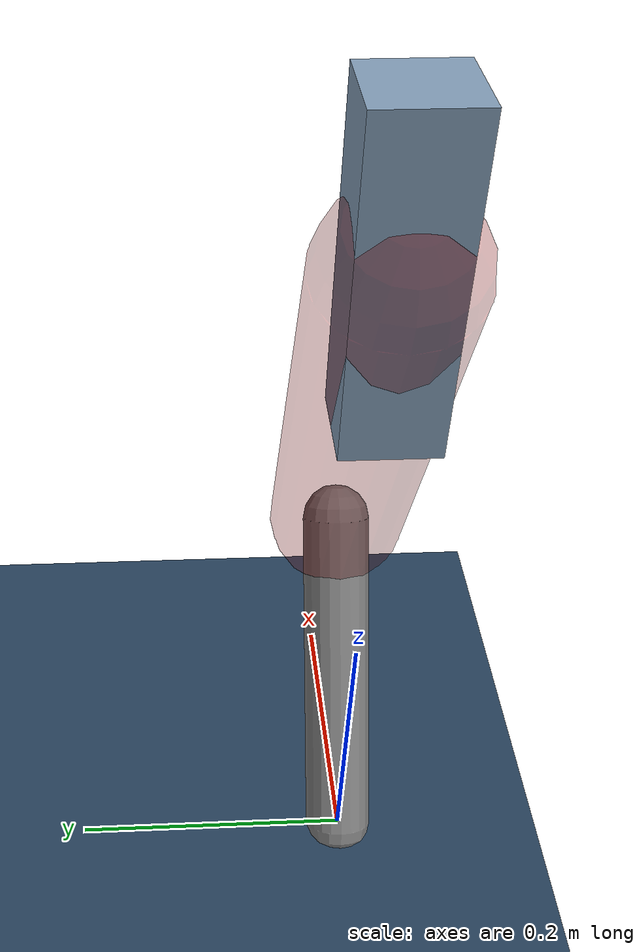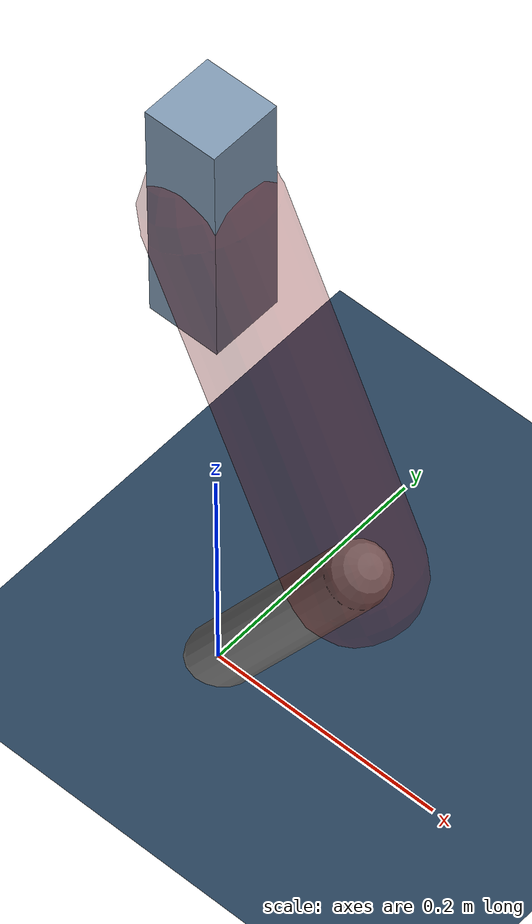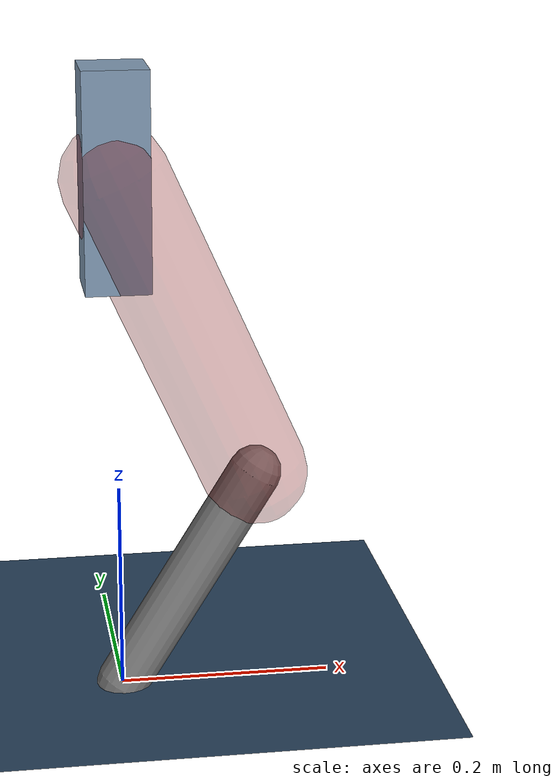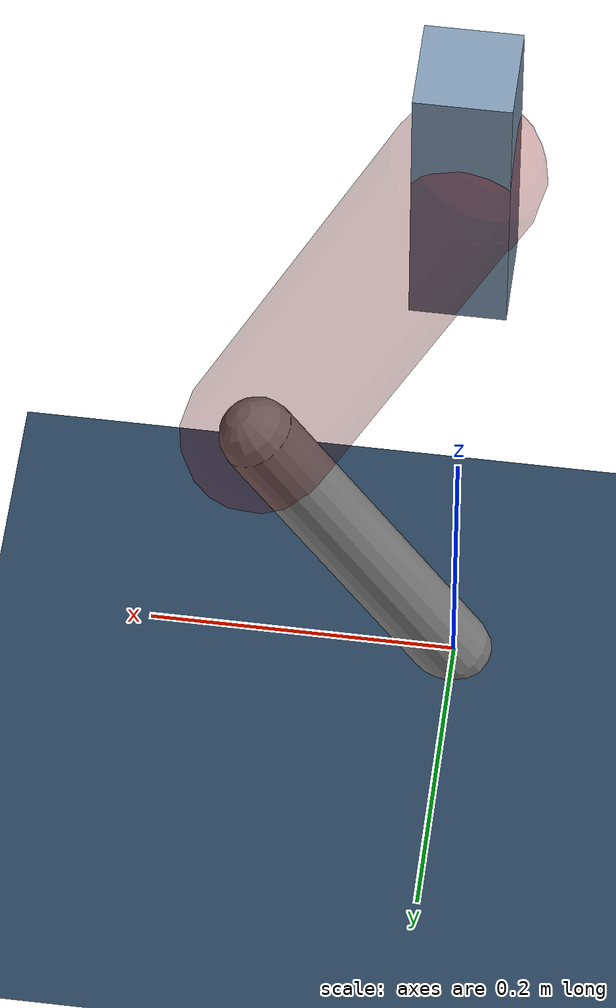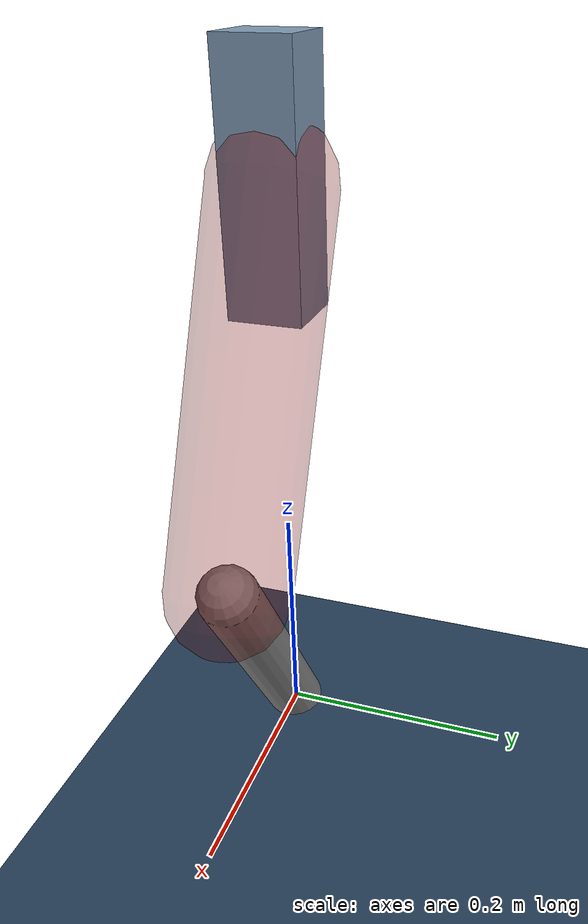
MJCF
<mujoco model="Hopper2D">
	<compiler inertiafromgeom="true" angle="radian" />
	<option timestep="0.001" integrator="implicit" cone="elliptic" solver="Newton" tolerance="1e-10" />

	<default>
		<geom contype="1" conaffinity="1" condim="3" friction="2 0.005 0.0001" solref="0.005 1" />
		<joint limited="true" damping="0.1" />
	</default>

	<asset>
		<texture name="skybox" type="skybox" builtin="gradient" rgb1=".4 .6 .8" rgb2="0 0 0" width="800" height="800" />
		<texture name="grid" type="2d" builtin="checker" rgb1=".1 .2 .3" rgb2=".2 .3 .4" width="300" height="300" mark="edge" markrgb=".2 .3 .4" />
		<material name="ground" texture="grid" texrepeat="1 1" texuniform="true" reflectance="0.1" />
		<material name="leg" rgba="0.5 0.6 0.7 1" />
	</asset>

	<worldbody>

		<geom name="floor" type="plane" size="5 5 0.25" material="ground" />

		<light directional="false" diffuse="0.8 0.8 0.8" specular="0.3 0.3 0.3" pos="0 0 2" dir="0 0 -1" />
		<light mode="targetbodycom" target="base" directional="false" diffuse="0.8 0.8 0.8" specular="0.3 0.3 0.3" pos="0 0 2" dir="0 0 -1" />

		<camera name="fixed" pos="0 -2 1" xyaxes="1 0 0 0 0 1" />
		<camera name="tracking" mode="trackcom" pos="0 -3 1" />

		<body name="root" pos="0 0 0.4953217241368656">
			<joint name="slide_x" type="slide" axis="1 0 0" range="-100 100" />
			<joint name="slide_z" type="slide" axis="0 0 1" range="0 10" />

			<body name="base" pos="0 0 0">
				<geom name="torso" type="box" size="0.03 0.03 0.1" mass="1.948" material="leg" />

				<body name="link1" pos="0 0 0" euler="0 1.147081484320741 0">
					<joint type="hinge" axis="0 -1 0" pos="0 0 0" name="hinge1" limited="true" range="-3.14 3.14" stiffness="0" damping="0.1" />
					<geom name="thigh" type="capsule" fromto="0 0 0 0.31243501119726985 0 0" size="0.05" rgba="0.5 0 0 0.3" mass="1.0225180313523556" />

					<body name="link2" pos="0.31243501119726985 0 0" euler="0 0.9716029185731113 0">
						<joint type="hinge" axis="0 -1 0" pos="0 0 0" name="hinge2" limited="true" range="-3.14 3.14" stiffness="0" damping="0.1" />
						<geom name="shank" type="capsule" fromto="0 0 0 0.24661371824322179 0 0" size="0.025" mass="0.4397523464188996" />

					</body>
				</body>
			</body>
		</body>
	</worldbody>

	<actuator>
		<motor name="torque1" joint="hinge1" ctrlrange="-24.740279286755747 24.740279286755747" ctrllimited="true" gear="1" />
		<motor name="torque2" joint="hinge2" ctrlrange="-63.95452709170506 63.95452709170506" ctrllimited="true" gear="1" />
	</actuator>
</mujoco>
